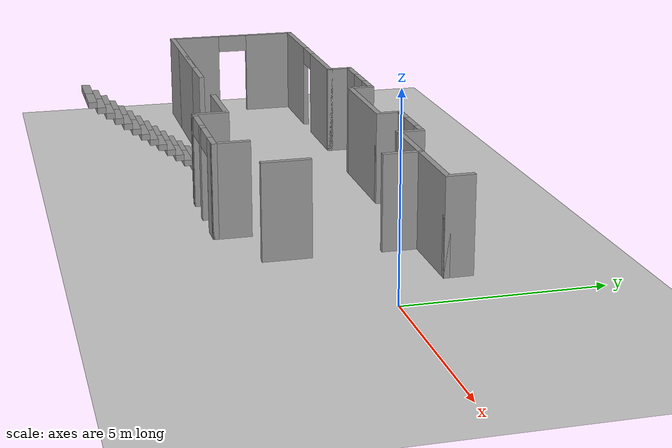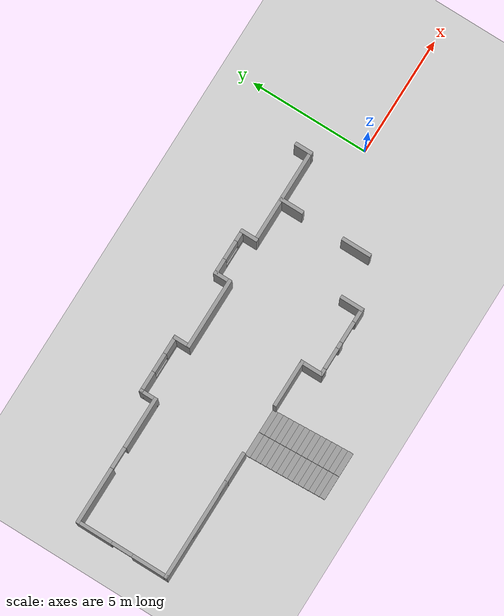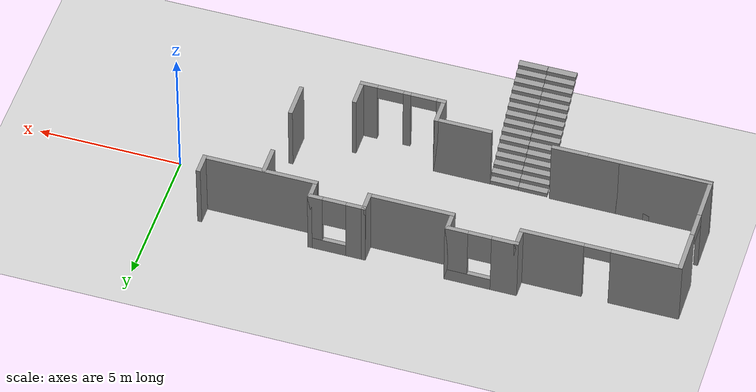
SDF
<sdf version="1.6">
 <world name="default">
  <model name="ground_plane">
   <static>1</static>
   <link name="link">
    <collision name="collision">
     <geometry><plane><normal>0 0 1</normal><size>100 100</size></plane></geometry>
     <surface><friction><ode><mu>100</mu><mu2>50</mu2></ode></friction></surface>
    </collision>
    <visual name="visual">
     <cast_shadows>0</cast_shadows>
     <geometry><plane><normal>0 0 1</normal><size>100 100</size></plane></geometry>
     <material>
      <script><uri>file://media/materials/scripts/gazebo.material</uri><name>Gazebo/Grey</name></script>
     </material>
    </visual>
   </link>
  </model>
  <model name="mff_2fl">
   <pose>-0.86779 5.06075 0 0 -0 0</pose>
   <link name="Stairs_0">
    <visual name="Stairs_0_Visual_0">
     <pose>-10.8058 -7.41609 0.083333 0 -0 0</pose>
     <geometry><box><size>1 0.233333 0.166667</size></box></geometry>
     <material>
      <script><uri>file://media/materials/scripts/gazebo.material</uri><name>Gazebo/Grey</name></script>
      <ambient>1 1 1 1</ambient>
     </material>
    </visual>
    <collision name="Stairs_0_Collision_0">
     <geometry><box><size>1 0.233333 0.166667</size></box></geometry>
     <pose>-10.8058 -7.41609 0.083333 0 -0 0</pose>
    </collision>
    <visual name="Stairs_0_Visual_1">
     <pose>-10.8058 -7.64942 0.25 0 -0 0</pose>
     <geometry><box><size>1 0.233333 0.166667</size></box></geometry>
     <material>
      <script><uri>file://media/materials/scripts/gazebo.material</uri><name>Gazebo/Grey</name></script>
      <ambient>1 1 1 1</ambient>
     </material>
    </visual>
    <collision name="Stairs_0_Collision_1">
     <geometry><box><size>1 0.233333 0.166667</size></box></geometry>
     <pose>-10.8058 -7.64942 0.25 0 -0 0</pose>
    </collision>
    <visual name="Stairs_0_Visual_2">
     <pose>-10.8058 -7.88275 0.416667 0 -0 0</pose>
     <geometry><box><size>1 0.233333 0.166667</size></box></geometry>
     <material>
      <script><uri>file://media/materials/scripts/gazebo.material</uri><name>Gazebo/Grey</name></script>
      <ambient>1 1 1 1</ambient>
     </material>
    </visual>
    <collision name="Stairs_0_Collision_2">
     <geometry><box><size>1 0.233333 0.166667</size></box></geometry>
     <pose>-10.8058 -7.88275 0.416667 0 -0 0</pose>
    </collision>
    <visual name="Stairs_0_Visual_3">
     <pose>-10.8058 -8.11609 0.583333 0 -0 0</pose>
     <geometry><box><size>1 0.233333 0.166667</size></box></geometry>
     <material>
      <script><uri>file://media/materials/scripts/gazebo.material</uri><name>Gazebo/Grey</name></script>
      <ambient>1 1 1 1</ambient>
     </material>
    </visual>
    <collision name="Stairs_0_Collision_3">
     <geometry><box><size>1 0.233333 0.166667</size></box></geometry>
     <pose>-10.8058 -8.11609 0.583333 0 -0 0</pose>
    </collision>
    <visual name="Stairs_0_Visual_4">
     <pose>-10.8058 -8.34942 0.75 0 -0 0</pose>
     <geometry><box><size>1 0.233333 0.166667</size></box></geometry>
     <material>
      <script><uri>file://media/materials/scripts/gazebo.material</uri><name>Gazebo/Grey</name></script>
      <ambient>1 1 1 1</ambient>
     </material>
    </visual>
    <collision name="Stairs_0_Collision_4">
     <geometry><box><size>1 0.233333 0.166667</size></box></geometry>
     <pose>-10.8058 -8.34942 0.75 0 -0 0</pose>
    </collision>
    <visual name="Stairs_0_Visual_5">
     <pose>-10.8058 -8.58275 0.916667 0 -0 0</pose>
     <geometry><box><size>1 0.233333 0.166667</size></box></geometry>
     <material>
      <script><uri>file://media/materials/scripts/gazebo.material</uri><name>Gazebo/Grey</name></script>
      <ambient>1 1 1 1</ambient>
     </material>
    </visual>
    <collision name="Stairs_0_Collision_5">
     <geometry><box><size>1 0.233333 0.166667</size></box></geometry>
     <pose>-10.8058 -8.58275 0.916667 0 -0 0</pose>
    </collision>
    <visual name="Stairs_0_Visual_6">
     <pose>-10.8058 -8.81609 1.08333 0 -0 0</pose>
     <geometry><box><size>1 0.233333 0.166667</size></box></geometry>
     <material>
      <script><uri>file://media/materials/scripts/gazebo.material</uri><name>Gazebo/Grey</name></script>
      <ambient>1 1 1 1</ambient>
     </material>
    </visual>
    <collision name="Stairs_0_Collision_6">
     <geometry><box><size>1 0.233333 0.166667</size></box></geometry>
     <pose>-10.8058 -8.81609 1.08333 0 -0 0</pose>
    </collision>
    <visual name="Stairs_0_Visual_7">
     <pose>-10.8058 -9.04942 1.25 0 -0 0</pose>
     <geometry><box><size>1 0.233333 0.166667</size></box></geometry>
     <material>
      <script><uri>file://media/materials/scripts/gazebo.material</uri><name>Gazebo/Grey</name></script>
      <ambient>1 1 1 1</ambient>
     </material>
    </visual>
    <collision name="Stairs_0_Collision_7">
     <geometry><box><size>1 0.233333 0.166667</size></box></geometry>
     <pose>-10.8058 -9.04942 1.25 0 -0 0</pose>
    </collision>
    <visual name="Stairs_0_Visual_8">
     <pose>-10.8058 -9.28275 1.41667 0 -0 0</pose>
     <geometry><box><size>1 0.233333 0.166667</size></box></geometry>
     <material>
      <script><uri>file://media/materials/scripts/gazebo.material</uri><name>Gazebo/Grey</name></script>
      <ambient>1 1 1 1</ambient>
     </material>
    </visual>
    <collision name="Stairs_0_Collision_8">
     <geometry><box><size>1 0.233333 0.166667</size></box></geometry>
     <pose>-10.8058 -9.28275 1.41667 0 -0 0</pose>
    </collision>
    <visual name="Stairs_0_Visual_9">
     <pose>-10.8058 -9.51609 1.58333 0 -0 0</pose>
     <geometry><box><size>1 0.233333 0.166667</size></box></geometry>
     <material>
      <script><uri>file://media/materials/scripts/gazebo.material</uri><name>Gazebo/Grey</name></script>
      <ambient>1 1 1 1</ambient>
     </material>
    </visual>
    <collision name="Stairs_0_Collision_9">
     <geometry><box><size>1 0.233333 0.166667</size></box></geometry>
     <pose>-10.8058 -9.51609 1.58333 0 -0 0</pose>
    </collision>
    <visual name="Stairs_0_Visual_10">
     <pose>-10.8058 -9.74942 1.75 0 -0 0</pose>
     <geometry><box><size>1 0.233333 0.166667</size></box></geometry>
     <material>
      <script><uri>file://media/materials/scripts/gazebo.material</uri><name>Gazebo/Grey</name></script>
      <ambient>1 1 1 1</ambient>
     </material>
    </visual>
    <collision name="Stairs_0_Collision_10">
     <geometry><box><size>1 0.233333 0.166667</size></box></geometry>
     <pose>-10.8058 -9.74942 1.75 0 -0 0</pose>
    </collision>
    <visual name="Stairs_0_Visual_11">
     <pose>-10.8058 -9.98275 1.91667 0 -0 0</pose>
     <geometry><box><size>1 0.233333 0.166667</size></box></geometry>
     <material>
      <script><uri>file://media/materials/scripts/gazebo.material</uri><name>Gazebo/Grey</name></script>
      <ambient>1 1 1 1</ambient>
     </material>
    </visual>
    <collision name="Stairs_0_Collision_11">
     <geometry><box><size>1 0.233333 0.166667</size></box></geometry>
     <pose>-10.8058 -9.98275 1.91667 0 -0 0</pose>
    </collision>
    <visual name="Stairs_0_Visual_12">
     <pose>-10.8058 -10.2161 2.08333 0 -0 0</pose>
     <geometry><box><size>1 0.233333 0.166667</size></box></geometry>
     <material>
      <script><uri>file://media/materials/scripts/gazebo.material</uri><name>Gazebo/Grey</name></script>
      <ambient>1 1 1 1</ambient>
     </material>
    </visual>
    <collision name="Stairs_0_Collision_12">
     <geometry><box><size>1 0.233333 0.166667</size></box></geometry>
     <pose>-10.8058 -10.2161 2.08333 0 -0 0</pose>
    </collision>
    <visual name="Stairs_0_Visual_13">
     <pose>-10.8058 -10.4494 2.25 0 -0 0</pose>
     <geometry><box><size>1 0.233333 0.166667</size></box></geometry>
     <material>
      <script><uri>file://media/materials/scripts/gazebo.material</uri><name>Gazebo/Grey</name></script>
      <ambient>1 1 1 1</ambient>
     </material>
    </visual>
    <collision name="Stairs_0_Collision_13">
     <geometry><box><size>1 0.233333 0.166667</size></box></geometry>
     <pose>-10.8058 -10.4494 2.25 0 -0 0</pose>
    </collision>
    <visual name="Stairs_0_Visual_14">
     <pose>-10.8058 -10.6828 2.41667 0 -0 0</pose>
     <geometry><box><size>1 0.233333 0.166667</size></box></geometry>
     <material>
      <script><uri>file://media/materials/scripts/gazebo.material</uri><name>Gazebo/Grey</name></script>
      <ambient>1 1 1 1</ambient>
     </material>
    </visual>
    <collision name="Stairs_0_Collision_14">
     <geometry><box><size>1 0.233333 0.166667</size></box></geometry>
     <pose>-10.8058 -10.6828 2.41667 0 -0 0</pose>
    </collision>
   </link>
   <link name="Stairs_1">
    <visual name="Stairs_1_Visual_0">
     <pose>-9.79839 -7.41647 0.083333 0 -0 0</pose>
     <geometry><box><size>1 0.233333 0.166667</size></box></geometry>
     <material>
      <script><uri>file://media/materials/scripts/gazebo.material</uri><name>Gazebo/Grey</name></script>
      <ambient>1 1 1 1</ambient>
     </material>
    </visual>
    <collision name="Stairs_1_Collision_0">
     <geometry><box><size>1 0.233333 0.166667</size></box></geometry>
     <pose>-9.79839 -7.41647 0.083333 0 -0 0</pose>
    </collision>
    <visual name="Stairs_1_Visual_1">
     <pose>-9.79839 -7.6498 0.25 0 -0 0</pose>
     <geometry><box><size>1 0.233333 0.166667</size></box></geometry>
     <material>
      <script><uri>file://media/materials/scripts/gazebo.material</uri><name>Gazebo/Grey</name></script>
      <ambient>1 1 1 1</ambient>
     </material>
    </visual>
    <collision name="Stairs_1_Collision_1">
     <geometry><box><size>1 0.233333 0.166667</size></box></geometry>
     <pose>-9.79839 -7.6498 0.25 0 -0 0</pose>
    </collision>
    <visual name="Stairs_1_Visual_2">
     <pose>-9.79839 -7.88314 0.416667 0 -0 0</pose>
     <geometry><box><size>1 0.233333 0.166667</size></box></geometry>
     <material>
      <script><uri>file://media/materials/scripts/gazebo.material</uri><name>Gazebo/Grey</name></script>
      <ambient>1 1 1 1</ambient>
     </material>
    </visual>
    <collision name="Stairs_1_Collision_2">
     <geometry><box><size>1 0.233333 0.166667</size></box></geometry>
     <pose>-9.79839 -7.88314 0.416667 0 -0 0</pose>
    </collision>
    <visual name="Stairs_1_Visual_3">
     <pose>-9.79839 -8.11647 0.583333 0 -0 0</pose>
     <geometry><box><size>1 0.233333 0.166667</size></box></geometry>
     <material>
      <script><uri>file://media/materials/scripts/gazebo.material</uri><name>Gazebo/Grey</name></script>
      <ambient>1 1 1 1</ambient>
     </material>
    </visual>
    <collision name="Stairs_1_Collision_3">
     <geometry><box><size>1 0.233333 0.166667</size></box></geometry>
     <pose>-9.79839 -8.11647 0.583333 0 -0 0</pose>
    </collision>
    <visual name="Stairs_1_Visual_4">
     <pose>-9.79839 -8.3498 0.75 0 -0 0</pose>
     <geometry><box><size>1 0.233333 0.166667</size></box></geometry>
     <material>
      <script><uri>file://media/materials/scripts/gazebo.material</uri><name>Gazebo/Grey</name></script>
      <ambient>1 1 1 1</ambient>
     </material>
    </visual>
    <collision name="Stairs_1_Collision_4">
     <geometry><box><size>1 0.233333 0.166667</size></box></geometry>
     <pose>-9.79839 -8.3498 0.75 0 -0 0</pose>
    </collision>
    <visual name="Stairs_1_Visual_5">
     <pose>-9.79839 -8.58314 0.916667 0 -0 0</pose>
     <geometry><box><size>1 0.233333 0.166667</size></box></geometry>
     <material>
      <script><uri>file://media/materials/scripts/gazebo.material</uri><name>Gazebo/Grey</name></script>
      <ambient>1 1 1 1</ambient>
     </material>
    </visual>
    <collision name="Stairs_1_Collision_5">
     <geometry><box><size>1 0.233333 0.166667</size></box></geometry>
     <pose>-9.79839 -8.58314 0.916667 0 -0 0</pose>
    </collision>
    <visual name="Stairs_1_Visual_6">
     <pose>-9.79839 -8.81647 1.08333 0 -0 0</pose>
     <geometry><box><size>1 0.233333 0.166667</size></box></geometry>
     <material>
      <script><uri>file://media/materials/scripts/gazebo.material</uri><name>Gazebo/Grey</name></script>
      <ambient>1 1 1 1</ambient>
     </material>
    </visual>
    <collision name="Stairs_1_Collision_6">
     <geometry><box><size>1 0.233333 0.166667</size></box></geometry>
     <pose>-9.79839 -8.81647 1.08333 0 -0 0</pose>
    </collision>
    <visual name="Stairs_1_Visual_7">
     <pose>-9.79839 -9.0498 1.25 0 -0 0</pose>
     <geometry><box><size>1 0.233333 0.166667</size></box></geometry>
     <material>
      <script><uri>file://media/materials/scripts/gazebo.material</uri><name>Gazebo/Grey</name></script>
      <ambient>1 1 1 1</ambient>
     </material>
    </visual>
    <collision name="Stairs_1_Collision_7">
     <geometry><box><size>1 0.233333 0.166667</size></box></geometry>
     <pose>-9.79839 -9.0498 1.25 0 -0 0</pose>
    </collision>
    <visual name="Stairs_1_Visual_8">
     <pose>-9.79839 -9.28314 1.41667 0 -0 0</pose>
     <geometry><box><size>1 0.233333 0.166667</size></box></geometry>
     <material>
      <script><uri>file://media/materials/scripts/gazebo.material</uri><name>Gazebo/Grey</name></script>
      <ambient>1 1 1 1</ambient>
     </material>
    </visual>
    <collision name="Stairs_1_Collision_8">
     <geometry><box><size>1 0.233333 0.166667</size></box></geometry>
     <pose>-9.79839 -9.28314 1.41667 0 -0 0</pose>
    </collision>
    <visual name="Stairs_1_Visual_9">
     <pose>-9.79839 -9.51647 1.58333 0 -0 0</pose>
     <geometry><box><size>1 0.233333 0.166667</size></box></geometry>
     <material>
      <script><uri>file://media/materials/scripts/gazebo.material</uri><name>Gazebo/Grey</name></script>
      <ambient>1 1 1 1</ambient>
     </material>
    </visual>
    <collision name="Stairs_1_Collision_9">
     <geometry><box><size>1 0.233333 0.166667</size></box></geometry>
     <pose>-9.79839 -9.51647 1.58333 0 -0 0</pose>
    </collision>
    <visual name="Stairs_1_Visual_10">
     <pose>-9.79839 -9.74981 1.75 0 -0 0</pose>
     <geometry><box><size>1 0.233333 0.166667</size></box></geometry>
     <material>
      <script><uri>file://media/materials/scripts/gazebo.material</uri><name>Gazebo/Grey</name></script>
      <ambient>1 1 1 1</ambient>
     </material>
    </visual>
    <collision name="Stairs_1_Collision_10">
     <geometry><box><size>1 0.233333 0.166667</size></box></geometry>
     <pose>-9.79839 -9.74981 1.75 0 -0 0</pose>
    </collision>
    <visual name="Stairs_1_Visual_11">
     <pose>-9.79839 -9.98314 1.91667 0 -0 0</pose>
     <geometry><box><size>1 0.233333 0.166667</size></box></geometry>
     <material>
      <script><uri>file://media/materials/scripts/gazebo.material</uri><name>Gazebo/Grey</name></script>
      <ambient>1 1 1 1</ambient>
     </material>
    </visual>
    <collision name="Stairs_1_Collision_11">
     <geometry><box><size>1 0.233333 0.166667</size></box></geometry>
     <pose>-9.79839 -9.98314 1.91667 0 -0 0</pose>
    </collision>
    <visual name="Stairs_1_Visual_12">
     <pose>-9.79839 -10.2165 2.08333 0 -0 0</pose>
     <geometry><box><size>1 0.233333 0.166667</size></box></geometry>
     <material>
      <script><uri>file://media/materials/scripts/gazebo.material</uri><name>Gazebo/Grey</name></script>
      <ambient>1 1 1 1</ambient>
     </material>
    </visual>
    <collision name="Stairs_1_Collision_12">
     <geometry><box><size>1 0.233333 0.166667</size></box></geometry>
     <pose>-9.79839 -10.2165 2.08333 0 -0 0</pose>
    </collision>
    <visual name="Stairs_1_Visual_13">
     <pose>-9.79839 -10.4498 2.25 0 -0 0</pose>
     <geometry><box><size>1 0.233333 0.166667</size></box></geometry>
     <material>
      <script><uri>file://media/materials/scripts/gazebo.material</uri><name>Gazebo/Grey</name></script>
      <ambient>1 1 1 1</ambient>
     </material>
    </visual>
    <collision name="Stairs_1_Collision_13">
     <geometry><box><size>1 0.233333 0.166667</size></box></geometry>
     <pose>-9.79839 -10.4498 2.25 0 -0 0</pose>
    </collision>
    <visual name="Stairs_1_Visual_14">
     <pose>-9.79839 -10.6831 2.41667 0 -0 0</pose>
     <geometry><box><size>1 0.233333 0.166667</size></box></geometry>
     <material>
      <script><uri>file://media/materials/scripts/gazebo.material</uri><name>Gazebo/Grey</name></script>
      <ambient>1 1 1 1</ambient>
     </material>
    </visual>
    <collision name="Stairs_1_Collision_14">
     <geometry><box><size>1 0.233333 0.166667</size></box></geometry>
     <pose>-9.79839 -10.6831 2.41667 0 -0 0</pose>
    </collision>
   </link>
   <link name="Wall_18">
    <collision name="Wall_18_Collision">
     <geometry><box><size>4.25 0.15 2.5</size></box></geometry>
     <pose>0 0 1.25 0 -0 0</pose>
    </collision>
    <visual name="Wall_18_Visual">
     <pose>0 0 1.25 0 -0 0</pose>
     <geometry><box><size>4.25 0.15 2.5</size></box></geometry>
     <material>
      <script><uri>file://media/materials/scripts/gazebo.material</uri><name>Gazebo/Grey</name></script>
      <ambient>1 1 1 1</ambient>
     </material>
    </visual>
    <pose>-14.7699 -7.33461 0 0 -0 3.14159</pose>
   </link>
   <link name="Wall_19">
    <pose>-14.1449 -7.33461 0 0 -0 0</pose>
    <visual name="Wall_19_Visual_0">
     <pose>-1.61212 0 1.25 0 -0 0</pose>
     <geometry><box><size>2.27575 0.15 2.5</size></box></geometry>
     <material>
      <script><uri>file://media/materials/scripts/gazebo.material</uri><name>Gazebo/Grey</name></script>
      <ambient>1 1 1 1</ambient>
     </material>
    </visual>
    <collision name="Wall_19_Collision_0">
     <geometry><box><size>2.27575 0.15 2.5</size></box></geometry>
     <pose>-1.61212 0 1.25 0 -0 0</pose>
    </collision>
    <visual name="Wall_19_Visual_1">
     <pose>1.58788 0 1.25 0 -0 0</pose>
     <geometry><box><size>2.32425 0.15 2.5</size></box></geometry>
     <material>
      <script><uri>file://media/materials/scripts/gazebo.material</uri><name>Gazebo/Grey</name></script>
      <ambient>1 1 1 1</ambient>
     </material>
    </visual>
    <collision name="Wall_19_Collision_1">
     <geometry><box><size>2.32425 0.15 2.5</size></box></geometry>
     <pose>1.58788 0 1.25 0 -0 0</pose>
    </collision>
    <visual name="Wall_19_Visual_2">
     <pose>-0.024247 0 2.25 0 -0 0</pose>
     <geometry><box><size>0.9 0.15 0.5</size></box></geometry>
     <material>
      <script><uri>file://media/materials/scripts/gazebo.material</uri><name>Gazebo/Grey</name></script>
      <ambient>1 1 1 1</ambient>
     </material>
    </visual>
    <collision name="Wall_19_Collision_2">
     <geometry><box><size>0.9 0.15 0.5</size></box></geometry>
     <pose>-0.024247 0 2.25 0 -0 0</pose>
    </collision>
   </link>
   <link name="Wall_21">
    <pose>-16.8199 -5.40961 0 0 -0 1.5708</pose>
    <visual name="Wall_21_Visual_0">
     <pose>-1.22094 0 1.25 0 -0 0</pose>
     <geometry><box><size>1.55811 0.15 2.5</size></box></geometry>
     <material>
      <script><uri>file://media/materials/scripts/gazebo.material</uri><name>Gazebo/Grey</name></script>
      <ambient>1 1 1 1</ambient>
     </material>
    </visual>
    <collision name="Wall_21_Collision_0">
     <geometry><box><size>1.55811 0.15 2.5</size></box></geometry>
     <pose>-1.22094 0 1.25 0 -0 0</pose>
    </collision>
    <visual name="Wall_21_Visual_1">
     <pose>1.22906 0 1.25 0 -0 0</pose>
     <geometry><box><size>1.54188 0.15 2.5</size></box></geometry>
     <material>
      <script><uri>file://media/materials/scripts/gazebo.material</uri><name>Gazebo/Grey</name></script>
      <ambient>1 1 1 1</ambient>
     </material>
    </visual>
    <collision name="Wall_21_Collision_1">
     <geometry><box><size>1.54188 0.15 2.5</size></box></geometry>
     <pose>1.22906 0 1.25 0 -0 0</pose>
    </collision>
    <visual name="Wall_21_Visual_2">
     <pose>0.008115 0 2.25 0 -0 0</pose>
     <geometry><box><size>0.9 0.15 0.5</size></box></geometry>
     <material>
      <script><uri>file://media/materials/scripts/gazebo.material</uri><name>Gazebo/Grey</name></script>
      <ambient>1 1 1 1</ambient>
     </material>
    </visual>
    <collision name="Wall_21_Collision_2">
     <geometry><box><size>0.9 0.15 0.5</size></box></geometry>
     <pose>0.008115 0 2.25 0 -0 0</pose>
    </collision>
   </link>
   <link name="Wall_22">
    <pose>-14.1449 -3.48461 0 0 -0 0</pose>
    <visual name="Wall_22_Visual_0">
     <pose>-1.54562 0 1.25 0 -0 0</pose>
     <geometry><box><size>2.40876 0.15 2.5</size></box></geometry>
     <material>
      <script><uri>file://media/materials/scripts/gazebo.material</uri><name>Gazebo/Grey</name></script>
      <ambient>1 1 1 1</ambient>
     </material>
    </visual>
    <collision name="Wall_22_Collision_0">
     <geometry><box><size>2.40876 0.15 2.5</size></box></geometry>
     <pose>-1.54562 0 1.25 0 -0 0</pose>
    </collision>
    <visual name="Wall_22_Visual_1">
     <pose>1.65438 0 1.25 0 -0 0</pose>
     <geometry><box><size>2.19124 0.15 2.5</size></box></geometry>
     <material>
      <script><uri>file://media/materials/scripts/gazebo.material</uri><name>Gazebo/Grey</name></script>
      <ambient>1 1 1 1</ambient>
     </material>
    </visual>
    <collision name="Wall_22_Collision_1">
     <geometry><box><size>2.19124 0.15 2.5</size></box></geometry>
     <pose>1.65438 0 1.25 0 -0 0</pose>
    </collision>
    <visual name="Wall_22_Visual_2">
     <pose>0.108755 0 2.25 0 -0 0</pose>
     <geometry><box><size>0.9 0.15 0.5</size></box></geometry>
     <material>
      <script><uri>file://media/materials/scripts/gazebo.material</uri><name>Gazebo/Grey</name></script>
      <ambient>1 1 1 1</ambient>
     </material>
    </visual>
    <collision name="Wall_22_Collision_2">
     <geometry><box><size>0.9 0.15 0.5</size></box></geometry>
     <pose>0.108755 0 2.25 0 -0 0</pose>
    </collision>
   </link>
   <link name="Wall_23">
    <collision name="Wall_23_Collision">
     <geometry><box><size>0.75 0.15 2.5</size></box></geometry>
     <pose>0 0 1.25 0 -0 0</pose>
    </collision>
    <visual name="Wall_23_Visual">
     <pose>0 0 1.25 0 -0 0</pose>
     <geometry><box><size>0.75 0.15 2.5</size></box></geometry>
     <material>
      <script><uri>file://media/materials/scripts/gazebo.material</uri><name>Gazebo/Grey</name></script>
      <ambient>1 1 1 1</ambient>
     </material>
    </visual>
    <pose>-11.4699 -3.18461 0 0 -0 1.5708</pose>
   </link>
   <link name="Wall_24">
    <pose>-10.2949 -2.88461 0 0 -0 0</pose>
    <visual name="Wall_24_Visual_0">
     <pose>-0.793709 0 1.25 0 -0 0</pose>
     <geometry><box><size>0.912583 0.15 2.5</size></box></geometry>
     <material>
      <script><uri>file://media/materials/scripts/gazebo.material</uri><name>Gazebo/Grey</name></script>
      <ambient>1 1 1 1</ambient>
     </material>
    </visual>
    <collision name="Wall_24_Collision_0">
     <geometry><box><size>0.912583 0.15 2.5</size></box></geometry>
     <pose>-0.793709 0 1.25 0 -0 0</pose>
    </collision>
    <visual name="Wall_24_Visual_1">
     <pose>0.456291 0 0.25 0 -0 0</pose>
     <geometry><box><size>1.58742 0.15 0.5</size></box></geometry>
     <material>
      <script><uri>file://media/materials/scripts/gazebo.material</uri><name>Gazebo/Grey</name></script>
      <ambient>1 1 1 1</ambient>
     </material>
    </visual>
    <collision name="Wall_24_Collision_1">
     <geometry><box><size>1.58742 0.15 0.5</size></box></geometry>
     <pose>0.456291 0 0.25 0 -0 0</pose>
    </collision>
    <visual name="Wall_24_Visual_2">
     <pose>0.856291 0 1.5 0 -0 0</pose>
     <geometry><box><size>0.787417 0.15 2</size></box></geometry>
     <material>
      <script><uri>file://media/materials/scripts/gazebo.material</uri><name>Gazebo/Grey</name></script>
      <ambient>1 1 1 1</ambient>
     </material>
    </visual>
    <collision name="Wall_24_Collision_2">
     <geometry><box><size>0.787417 0.15 2</size></box></geometry>
     <pose>0.856291 0 1.5 0 -0 0</pose>
    </collision>
    <visual name="Wall_24_Visual_3">
     <pose>0.062583 0 1.9 0 -0 0</pose>
     <geometry><box><size>0.8 0.15 1.2</size></box></geometry>
     <material>
      <script><uri>file://media/materials/scripts/gazebo.material</uri><name>Gazebo/Grey</name></script>
      <ambient>1 1 1 1</ambient>
     </material>
    </visual>
    <collision name="Wall_24_Collision_3">
     <geometry><box><size>0.8 0.15 1.2</size></box></geometry>
     <pose>0.062583 0 1.9 0 -0 0</pose>
    </collision>
   </link>
   <link name="Wall_25">
    <collision name="Wall_25_Collision">
     <geometry><box><size>0.75 0.15 2.5</size></box></geometry>
     <pose>0 0 1.25 0 -0 0</pose>
    </collision>
    <visual name="Wall_25_Visual">
     <pose>0 0 1.25 0 -0 0</pose>
     <geometry><box><size>0.75 0.15 2.5</size></box></geometry>
     <material>
      <script><uri>file://media/materials/scripts/gazebo.material</uri><name>Gazebo/Grey</name></script>
      <ambient>1 1 1 1</ambient>
     </material>
    </visual>
    <pose>-9.1199 -3.18461 0 0 0 -1.5708</pose>
   </link>
   <link name="Wall_26">
    <collision name="Wall_26_Collision">
     <geometry><box><size>3 0.15 2.5</size></box></geometry>
     <pose>0 0 1.25 0 -0 0</pose>
    </collision>
    <visual name="Wall_26_Visual">
     <pose>0 0 1.25 0 -0 0</pose>
     <geometry><box><size>3 0.15 2.5</size></box></geometry>
     <material>
      <script><uri>file://media/materials/scripts/gazebo.material</uri><name>Gazebo/Grey</name></script>
      <ambient>1 1 1 1</ambient>
     </material>
    </visual>
    <pose>-7.6949 -3.48461 0 0 -0 0</pose>
   </link>
   <link name="Wall_29">
    <collision name="Wall_29_Collision">
     <geometry><box><size>0.75 0.15 2.5</size></box></geometry>
     <pose>0 0 1.25 0 -0 0</pose>
    </collision>
    <visual name="Wall_29_Visual">
     <pose>0 0 1.25 0 -0 0</pose>
     <geometry><box><size>0.75 0.15 2.5</size></box></geometry>
     <material>
      <script><uri>file://media/materials/scripts/gazebo.material</uri><name>Gazebo/Grey</name></script>
      <ambient>1 1 1 1</ambient>
     </material>
    </visual>
    <pose>-6.2699 -3.18461 0 0 -0 1.5708</pose>
   </link>
   <link name="Wall_30">
    <pose>-5.3449 -2.88461 0 0 -0 0</pose>
    <visual name="Wall_30_Visual_0">
     <pose>-0.65659 0 1.25 0 -0 0</pose>
     <geometry><box><size>0.68682 0.15 2.5</size></box></geometry>
     <material>
      <script><uri>file://media/materials/scripts/gazebo.material</uri><name>Gazebo/Grey</name></script>
      <ambient>1 1 1 1</ambient>
     </material>
    </visual>
    <collision name="Wall_30_Collision_0">
     <geometry><box><size>0.68682 0.15 2.5</size></box></geometry>
     <pose>-0.65659 0 1.25 0 -0 0</pose>
    </collision>
    <visual name="Wall_30_Visual_1">
     <pose>0.34341 0 0.25 0 -0 0</pose>
     <geometry><box><size>1.31318 0.15 0.5</size></box></geometry>
     <material>
      <script><uri>file://media/materials/scripts/gazebo.material</uri><name>Gazebo/Grey</name></script>
      <ambient>1 1 1 1</ambient>
     </material>
    </visual>
    <collision name="Wall_30_Collision_1">
     <geometry><box><size>1.31318 0.15 0.5</size></box></geometry>
     <pose>0.34341 0 0.25 0 -0 0</pose>
    </collision>
    <visual name="Wall_30_Visual_2">
     <pose>0.74341 0 1.5 0 -0 0</pose>
     <geometry><box><size>0.51318 0.15 2</size></box></geometry>
     <material>
      <script><uri>file://media/materials/scripts/gazebo.material</uri><name>Gazebo/Grey</name></script>
      <ambient>1 1 1 1</ambient>
     </material>
    </visual>
    <collision name="Wall_30_Collision_2">
     <geometry><box><size>0.51318 0.15 2</size></box></geometry>
     <pose>0.74341 0 1.5 0 -0 0</pose>
    </collision>
    <visual name="Wall_30_Visual_3">
     <pose>0.08682 0 1.9 0 -0 0</pose>
     <geometry><box><size>0.8 0.15 1.2</size></box></geometry>
     <material>
      <script><uri>file://media/materials/scripts/gazebo.material</uri><name>Gazebo/Grey</name></script>
      <ambient>1 1 1 1</ambient>
     </material>
    </visual>
    <collision name="Wall_30_Collision_3">
     <geometry><box><size>0.8 0.15 1.2</size></box></geometry>
     <pose>0.08682 0 1.9 0 -0 0</pose>
    </collision>
   </link>
   <link name="Wall_31">
    <collision name="Wall_31_Collision">
     <geometry><box><size>0.75 0.15 2.5</size></box></geometry>
     <pose>0 0 1.25 0 -0 0</pose>
    </collision>
    <visual name="Wall_31_Visual">
     <pose>0 0 1.25 0 -0 0</pose>
     <geometry><box><size>0.75 0.15 2.5</size></box></geometry>
     <material>
      <script><uri>file://media/materials/scripts/gazebo.material</uri><name>Gazebo/Grey</name></script>
      <ambient>1 1 1 1</ambient>
     </material>
    </visual>
    <pose>-4.4199 -3.18461 0 0 0 -1.5708</pose>
   </link>
   <link name="Wall_32">
    <collision name="Wall_32_Collision">
     <geometry><box><size>4 0.15 2.5</size></box></geometry>
     <pose>0 0 1.25 0 -0 0</pose>
    </collision>
    <visual name="Wall_32_Visual">
     <pose>0 0 1.25 0 -0 0</pose>
     <geometry><box><size>4 0.15 2.5</size></box></geometry>
     <material>
      <script><uri>file://media/materials/scripts/gazebo.material</uri><name>Gazebo/Grey</name></script>
      <ambient>1 1 1 1</ambient>
     </material>
    </visual>
    <pose>-2.4949 -3.48461 0 0 -0 0</pose>
   </link>
   <link name="Wall_33">
    <collision name="Wall_33_Collision">
     <geometry><box><size>0.75 0.15 2.5</size></box></geometry>
     <pose>0 0 1.25 0 -0 0</pose>
    </collision>
    <visual name="Wall_33_Visual">
     <pose>0 0 1.25 0 -0 0</pose>
     <geometry><box><size>0.75 0.15 2.5</size></box></geometry>
     <material>
      <script><uri>file://media/materials/scripts/gazebo.material</uri><name>Gazebo/Grey</name></script>
      <ambient>1 1 1 1</ambient>
     </material>
    </visual>
    <pose>-0.569901 -3.18461 0 0 -0 1.5708</pose>
   </link>
   <link name="Wall_43">
    <collision name="Wall_43_Collision">
     <geometry><box><size>2 0.15 2.5</size></box></geometry>
     <pose>0 0 1.25 0 -0 0</pose>
    </collision>
    <visual name="Wall_43_Visual">
     <pose>0 0 1.25 0 -0 0</pose>
     <geometry><box><size>2 0.15 2.5</size></box></geometry>
     <material>
      <script><uri>file://media/materials/scripts/gazebo.material</uri><name>Gazebo/Grey</name></script>
      <ambient>1 1 1 1</ambient>
     </material>
    </visual>
    <pose>-8.32959 -7.37005 0 0 -0 0</pose>
   </link>
   <link name="Wall_44">
    <collision name="Wall_44_Collision">
     <geometry><box><size>1 0.15 2.5</size></box></geometry>
     <pose>0 0 1.25 0 -0 0</pose>
    </collision>
    <visual name="Wall_44_Visual">
     <pose>0 0 1.25 0 -0 0</pose>
     <geometry><box><size>1 0.15 2.5</size></box></geometry>
     <material>
      <script><uri>file://media/materials/scripts/gazebo.material</uri><name>Gazebo/Grey</name></script>
      <ambient>1 1 1 1</ambient>
     </material>
    </visual>
    <pose>-7.40459 -7.79505 0 0 0 -1.5708</pose>
   </link>
   <link name="Wall_45">
    <pose>-5.97959 -8.22005 0 0 -0 0</pose>
    <visual name="Wall_45_Visual_0">
     <pose>-1.34224 0 1.25 0 -0 0</pose>
     <geometry><box><size>0.315518 0.15 2.5</size></box></geometry>
     <material>
      <script><uri>file://media/materials/scripts/gazebo.material</uri><name>Gazebo/Grey</name></script>
      <ambient>1 1 1 1</ambient>
     </material>
    </visual>
    <collision name="Wall_45_Collision_0">
     <geometry><box><size>0.315518 0.15 2.5</size></box></geometry>
     <pose>-1.34224 0 1.25 0 -0 0</pose>
    </collision>
    <visual name="Wall_45_Visual_1">
     <pose>-0.154032 0 1.25 0 -0 0</pose>
     <geometry><box><size>0.260899 0.15 2.5</size></box></geometry>
     <material>
      <script><uri>file://media/materials/scripts/gazebo.material</uri><name>Gazebo/Grey</name></script>
      <ambient>1 1 1 1</ambient>
     </material>
    </visual>
    <collision name="Wall_45_Collision_1">
     <geometry><box><size>0.260899 0.15 2.5</size></box></geometry>
     <pose>-0.154032 0 1.25 0 -0 0</pose>
    </collision>
    <visual name="Wall_45_Visual_2">
     <pose>1.18821 0 1.25 0 -0 0</pose>
     <geometry><box><size>0.623583 0.15 2.5</size></box></geometry>
     <material>
      <script><uri>file://media/materials/scripts/gazebo.material</uri><name>Gazebo/Grey</name></script>
      <ambient>1 1 1 1</ambient>
     </material>
    </visual>
    <collision name="Wall_45_Collision_2">
     <geometry><box><size>0.623583 0.15 2.5</size></box></geometry>
     <pose>1.18821 0 1.25 0 -0 0</pose>
    </collision>
    <visual name="Wall_45_Visual_3">
     <pose>-0.734482 0 2.25 0 -0 0</pose>
     <geometry><box><size>0.9 0.15 0.5</size></box></geometry>
     <material>
      <script><uri>file://media/materials/scripts/gazebo.material</uri><name>Gazebo/Grey</name></script>
      <ambient>1 1 1 1</ambient>
     </material>
    </visual>
    <collision name="Wall_45_Collision_3">
     <geometry><box><size>0.9 0.15 0.5</size></box></geometry>
     <pose>-0.734482 0 2.25 0 -0 0</pose>
    </collision>
    <visual name="Wall_45_Visual_4">
     <pose>0.426417 0 2.25 0 -0 0</pose>
     <geometry><box><size>0.9 0.15 0.5</size></box></geometry>
     <material>
      <script><uri>file://media/materials/scripts/gazebo.material</uri><name>Gazebo/Grey</name></script>
      <ambient>1 1 1 1</ambient>
     </material>
    </visual>
    <collision name="Wall_45_Collision_4">
     <geometry><box><size>0.9 0.15 0.5</size></box></geometry>
     <pose>0.426417 0 2.25 0 -0 0</pose>
    </collision>
   </link>
   <link name="Wall_46">
    <collision name="Wall_46_Collision">
     <geometry><box><size>1 0.15 2.5</size></box></geometry>
     <pose>0 0 1.25 0 -0 0</pose>
    </collision>
    <visual name="Wall_46_Visual">
     <pose>0 0 1.25 0 -0 0</pose>
     <geometry><box><size>1 0.15 2.5</size></box></geometry>
     <material>
      <script><uri>file://media/materials/scripts/gazebo.material</uri><name>Gazebo/Grey</name></script>
      <ambient>1 1 1 1</ambient>
     </material>
    </visual>
    <pose>-4.55459 -7.79505 0 0 -0 1.5708</pose>
   </link>
   <link name="Wall_88">
    <collision name="Wall_88_Collision">
     <geometry><box><size>1 0.15 2.5</size></box></geometry>
     <pose>0 0 1.25 0 -0 0</pose>
    </collision>
    <visual name="Wall_88_Visual">
     <pose>0 0 1.25 0 -0 0</pose>
     <geometry><box><size>1 0.15 2.5</size></box></geometry>
     <material>
      <script><uri>file://media/materials/scripts/gazebo.material</uri><name>Gazebo/Grey</name></script>
      <ambient>1 1 1 1</ambient>
     </material>
    </visual>
    <pose>-2.6316 -3.95125 0 0 0 -1.5708</pose>
   </link>
   <link name="Wall_90">
    <collision name="Wall_90_Collision">
     <geometry><box><size>1.25 0.15 2.5</size></box></geometry>
     <pose>0 0 1.25 0 -0 0</pose>
    </collision>
    <visual name="Wall_90_Visual">
     <pose>0 0 1.25 0 -0 0</pose>
     <geometry><box><size>1.25 0.15 2.5</size></box></geometry>
     <material>
      <script><uri>file://media/materials/scripts/gazebo.material</uri><name>Gazebo/Grey</name></script>
      <ambient>1 1 1 1</ambient>
     </material>
    </visual>
    <pose>-2.67182 -6.81794 0 0 -0 1.5708</pose>
   </link>
   <static>1</static>
  </model>
 </world>
</sdf>
